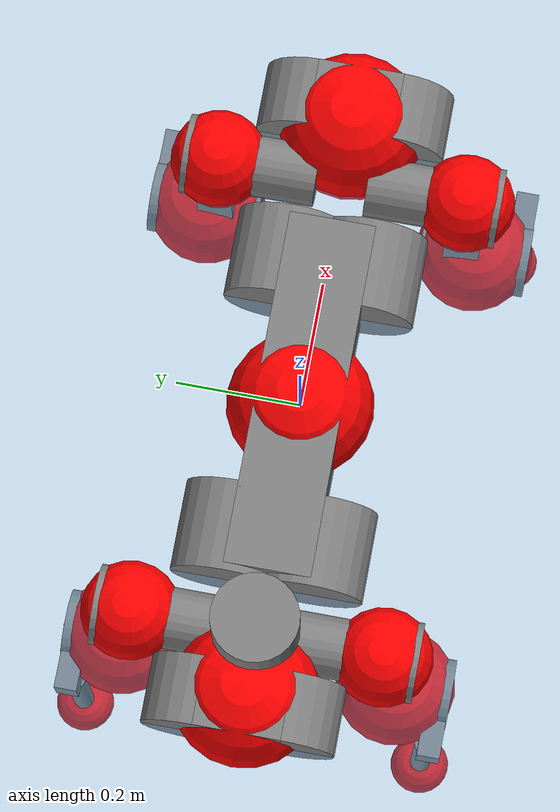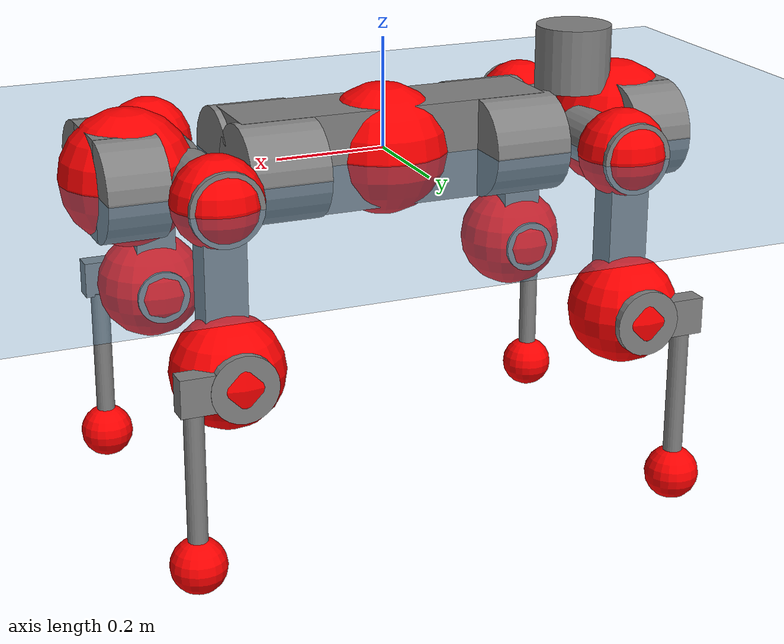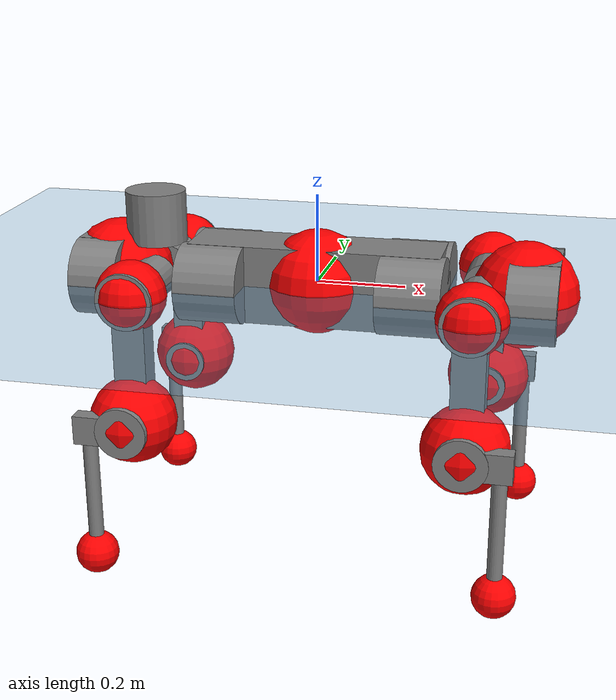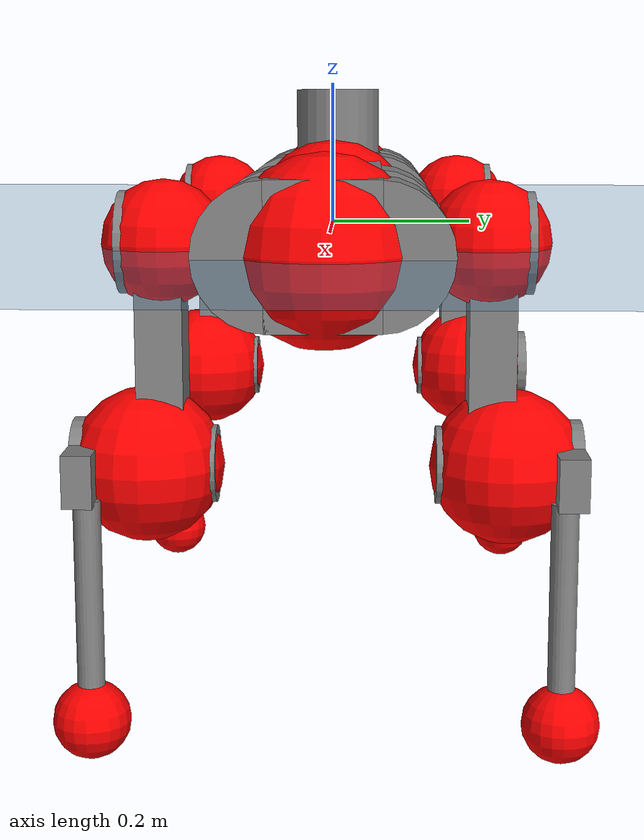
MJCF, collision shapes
<mujoco model="anymal_c">
  <compiler angle="radian" assetdir="assets" balanceinertia="true" inertiafromgeom="false"/>

  <option timestep="0.005" density="1.2" viscosity="2e-05"/>

  <size nkey="1"/>

  <visual>
    <quality shadowsize="8192"/>
    <map shadowclip="0.5"/>
  </visual>

  <default>
    <default class="/">
      <material specular="0" shininess="0.25"/>
      <geom contype="0" conaffinity="0" group="1" solref="-1000 -80"/>
      <site size="0.01 0.005 0.005" group="5"/>
      <general forcelimited="true" forcerange="-80 80" biastype="affine" gainprm="80" biasprm="0 -80 -2"/>
      <default class="anymal_c">
        <joint armature="0.01" damping="0.01" frictionloss="0.1"/>
        <default class="visual">
          <geom type="mesh" group="2"/>
          <default class="visual_zflip"/>
        </default>
        <default class="collision">
          <geom type="cylinder" group="3"/>
          <default class="foot">
            <geom size="0.03 0 0" type="sphere" condim="6" priority="1" friction="0.8 0.02 0.01" solimp="0.015 1 0.03"/>
          </default>
        </default>
      </default>
      <default class="reward_collision_sphere">
        <geom group="5" rgba="1 0 0 1"/>
      </default>
    </default>
  </default>

  <asset>
    <texture type="skybox" colorspace="auto" name="//unnamed_texture_0" builtin="gradient" rgb1="0.95 0.95 0.95" rgb2="0.95 0.95 0.95" width="100" height="600"/>
    <texture type="2d" colorspace="auto" name="texplane" builtin="checker" rgb1="0.345 0.575 0.748" rgb2="0.345 0.575 0.748" markrgb="1 1 1" width="512" height="512"/>
    <texture type="2d" colorspace="linear" name="base" file="base.png"/>
    <texture type="2d" colorspace="linear" name="top_shell" file="top_shell.png"/>
    <texture type="2d" colorspace="linear" name="bottom_shell" file="bottom_shell.png"/>
    <texture type="2d" colorspace="linear" name="remote" file="remote.png"/>
    <texture type="2d" colorspace="linear" name="hatch" file="hatch.png"/>
    <texture type="2d" colorspace="linear" name="handle" file="handle.png"/>
    <texture type="2d" colorspace="linear" name="face" file="face.png"/>
    <texture type="2d" colorspace="linear" name="battery" file="battery.png"/>
    <texture type="2d" colorspace="linear" name="lidar_cage" file="lidar_cage.png"/>
    <texture type="2d" colorspace="linear" name="depth_camera" file="depth_camera.png"/>
    <texture type="2d" colorspace="linear" name="wide_angle_camera" file="wide_angle_camera.png"/>
    <texture type="2d" colorspace="linear" name="lidar" file="lidar.png"/>
    <texture type="2d" colorspace="linear" name="drive" file="drive.png"/>
    <texture type="2d" colorspace="linear" name="hip_l" file="hip_l.png"/>
    <texture type="2d" colorspace="linear" name="shank_l" file="shank_l.png"/>
    <texture type="2d" colorspace="linear" name="foot" file="foot.png"/>
    <texture type="2d" colorspace="linear" name="thigh" file="thigh.png"/>
    <texture type="2d" colorspace="linear" name="shank_r" file="shank_r.png"/>
    <texture type="2d" colorspace="linear" name="hip_r" file="hip_r.png"/>
    <material name="MatPlane" class="/" texture="texplane" texuniform="true" texrepeat="2 2" specular="0.9" shininess="0.5"/>
    <material name="black_plastic" class="/" rgba="0.007 0.007 0.007 1"/>
    <material name="green" class="/" rgba="0.052 0.178 0.033 1"/>
    <material name="red" class="/" rgba="0.178 0.006 0.005 1"/>
    <material name="yellow" class="/" rgba="0.178 0.119 0.006 1"/>
    <material name="lwl" class="/" rgba="0.8 0.8 0.8 1"/>
    <material name="base" class="/" texture="base"/>
    <material name="top_shell" class="/" texture="top_shell"/>
    <material name="bottom_shell" class="/" texture="bottom_shell"/>
    <material name="hip_l" class="/" texture="hip_l"/>
    <material name="thigh" class="/" texture="thigh"/>
    <material name="shank_l" class="/" texture="shank_l"/>
    <material name="foot" class="/" texture="foot"/>
    <material name="hip_r" class="/" texture="hip_r"/>
    <material name="shank" class="/" texture="shank_r"/>
    <material name="hatch" class="/" texture="hatch"/>
    <material name="remote" class="/" texture="remote"/>
    <material name="handle" class="/" texture="handle"/>
    <material name="face" class="/" texture="face"/>
    <material name="depth_camera" class="/" texture="depth_camera"/>
    <material name="wide_angle_camera" class="/" texture="wide_angle_camera"/>
    <material name="battery" class="/" texture="battery"/>
    <material name="lidar_cage" class="/" texture="lidar_cage"/>
    <material name="lidar" class="/" texture="lidar"/>
    <material name="drive" class="/" texture="drive"/>
    <mesh name="base_0" class="/" file="base_0.obj"/>
    <mesh name="base_1" class="/" file="base_1.obj"/>
    <mesh name="base_2" class="/" file="base_2.obj"/>
    <mesh name="base_3" class="/" file="base_3.obj"/>
    <mesh name="base_4" class="/" file="base_4.obj"/>
    <mesh name="base_5" class="/" file="base_5.obj"/>
    <mesh name="top_shell" class="/" file="top_shell.obj"/>
    <mesh name="bottom_shell" class="/" file="bottom_shell.obj"/>
    <mesh name="remote" class="/" file="remote.obj"/>
    <mesh name="handle" class="/" file="handle.obj"/>
    <mesh name="face" class="/" file="face.obj"/>
    <mesh name="wide_angle_camera" class="/" file="wide_angle_camera.obj"/>
    <mesh name="depth_camera" class="/" file="depth_camera.obj"/>
    <mesh name="battery" class="/" file="battery.obj"/>
    <mesh name="lidar_cage" class="/" file="lidar_cage.obj"/>
    <mesh name="lidar" class="/" file="lidar.obj"/>
    <mesh name="drive" class="/" file="drive.obj"/>
    <mesh name="hip_l" class="/" file="hip_l.obj"/>
    <mesh name="thigh" class="/" file="thigh.obj"/>
    <mesh name="shank_l" class="/" file="shank_l.obj"/>
    <mesh name="foot" class="/" file="foot.obj"/>
    <mesh name="hip_r" class="/" file="hip_r.obj"/>
    <mesh name="hatch" class="/" file="hatch.obj"/>
    <mesh name="shank_r" class="/" file="shank_r.obj"/>
  </asset>

  <worldbody>
    <geom name="floor" class="/" size="100 100 0.125" type="plane" group="0" material="MatPlane"/>
    <light name="toplight_shadow" class="/" pos="0 0 5" dir="0.0990148 0.0990148 -0.990148" type="directional" ambient="0.04 0.04 0.04" diffuse="0.55 0.55 0.55" specular="0.12 0.12 0.12"/>
    <light name="toplight_fill" class="/" pos="0 0 5" dir="0.0990148 0.0990148 -0.990148" type="directional" castshadow="false" ambient="0.04 0.04 0.04" diffuse="0.3 0.3 0.3" specular="0.08 0.08 0.08"/>
    <body name="trunk" childclass="anymal_c" pos="0.000774518 0.000249073 0.000763703" quat="1 0.0002568 -0.000351372 0.000101738">
      <inertial pos="0.00330974 -0.000765051 0.0486507" quat="0.500577 0.501035 0.499015 0.49937" mass="18.2503" diaginertia="0.776946 0.420393 0.208294"/>
      <joint name="//unnamed_joint_0" type="free" armature="0" damping="0" frictionloss="0"/>
      <geom name="//unnamed_geom_1" class="visual" material="green" mesh="base_0"/>
      <geom name="//unnamed_geom_2" class="visual" material="yellow" mesh="base_1"/>
      <geom name="//unnamed_geom_3" class="visual" material="red" mesh="base_2"/>
      <geom name="//unnamed_geom_4" class="visual" material="black_plastic" mesh="base_3"/>
      <geom name="//unnamed_geom_5" class="visual" material="lwl" mesh="base_4"/>
      <geom name="//unnamed_geom_6" class="visual" material="base" mesh="base_5"/>
      <geom name="trunk_1" class="collision" size="0.285142 0.0688274 0.0884923" type="box"/>
      <geom name="trunk_2" class="collision" size="0.0884923 0.0712855" pos="0.225668 0.0646527 0" quat="0.707107 0 0.707107 0"/>
      <geom name="trunk_3" class="collision" size="0.0884923 0.0712855" pos="-0.225668 0.0646527 0" quat="0.707107 0 0.707107 0"/>
      <geom name="trunk_4" class="collision" size="0.0884923 0.0712855" pos="0.225668 -0.0646527 0" quat="0.707107 0 0.707107 0"/>
      <geom name="trunk_5" class="collision" size="0.0884923 0.0712855" pos="-0.225668 -0.0646527 0" quat="0.707107 0 0.707107 0"/>
      <geom name="//unnamed_geom_12" class="visual" material="top_shell" mesh="top_shell"/>
      <geom name="//unnamed_geom_13" class="visual" material="bottom_shell" mesh="bottom_shell"/>
      <geom name="//unnamed_geom_14" class="visual" material="remote" mesh="remote"/>
      <geom name="//unnamed_geom_15" class="visual" material="handle" mesh="handle"/>
      <geom name="//unnamed_geom_16" class="visual" pos="0.430067 0 0" quat="1 0 0 0" material="face" mesh="face"/>
      <geom name="trunk_6" class="collision" size="0.0540786 0.0688274 0.0884923" pos="0.487132 0 0" type="box"/>
      <geom name="//unnamed_geom_18" class="collision" size="0.0884923 0.0540786" pos="0.487132 0.0646527 0" quat="0.707107 0 0.707107 0"/>
      <geom name="//unnamed_geom_19" class="collision" size="0.0884923 0.0540786" pos="0.487132 -0.0646527 0" quat="0.707107 0 0.707107 0"/>
      <geom name="//unnamed_geom_20" class="visual" pos="0.478985 0 -0.0284943" quat="0.965926 0 0.258819 0" material="depth_camera" mesh="depth_camera"/>
      <geom name="//unnamed_geom_21" class="visual" pos="0.532266 0 0.014799" material="wide_angle_camera" mesh="wide_angle_camera"/>
      <geom name="//unnamed_geom_22" class="visual_zflip" pos="-0.430067 0 0" quat="0 0 0 1" material="face" mesh="face"/>
      <geom name="trunk_7" class="collision" size="0.0540786 0.0688274 0.0884923" pos="-0.487132 0 0" quat="0 0 0 1" type="box"/>
      <geom name="//unnamed_geom_24" class="collision" size="0.0884923 0.0540786" pos="-0.487132 -0.0646527 0" quat="0 -0.707107 0 0.707107"/>
      <geom name="//unnamed_geom_25" class="collision" size="0.0884923 0.0540786" pos="-0.487132 0.0646527 0" quat="0 -0.707107 0 0.707107"/>
      <geom name="//unnamed_geom_26" class="visual" pos="-0.478985 0 -0.0284943" quat="0 -0.258819 0 0.965926" material="depth_camera" mesh="depth_camera"/>
      <geom name="//unnamed_geom_27" class="visual_zflip" pos="-0.532266 0 0.014799" quat="0 0 0 1" material="wide_angle_camera" mesh="wide_angle_camera"/>
      <geom name="//unnamed_geom_28" class="visual" material="battery" mesh="battery"/>
      <geom name="//unnamed_geom_29" class="visual" pos="0 0.069122 0.0290904" quat="0.683013 -0.183013 0.183013 0.683013" material="depth_camera" mesh="depth_camera"/>
      <geom name="//unnamed_geom_30" class="visual" pos="0 -0.069122 0.0290904" quat="0.683013 0.183013 0.183013 -0.683013" material="depth_camera" mesh="depth_camera"/>
      <geom name="//unnamed_geom_31" class="visual" pos="-0.37767 0 0.0726605" quat="1 0 0 0" material="lidar_cage" mesh="lidar_cage"/>
      <geom name="trunk_8" class="collision" size="0.0688274 0.0589949" pos="-0.37767 0 0.131975"/>
      <geom name="//unnamed_geom_33" class="visual" pos="-0.37767 -4.4766e-05 0.140576" quat="0.707107 0 0 -0.707107" material="lidar" mesh="lidar"/>
      <geom name="//unnamed_geom_34" class="visual" pos="0.311163 0.0960786 -1.12071e-09" quat="0.258819 0.965926 0 0" material="drive" mesh="drive"/>
      <geom name="//unnamed_geom_35" class="visual" pos="0.311163 -0.0960786 1.12071e-09" quat="0.258819 -0.965926 0 0" material="drive" mesh="drive"/>
      <geom name="//unnamed_geom_36" class="visual" pos="-0.311163 0.0960786 1.12071e-09" quat="0 0 0.965926 -0.258819" material="drive" mesh="drive"/>
      <geom name="//unnamed_geom_37" class="visual" pos="-0.311163 -0.0960786 -1.12071e-09" quat="0 0 -0.965926 -0.258819" material="drive" mesh="drive"/>
      <geom name="//unnamed_geom_38" class="visual" pos="0.120356 0 0.0721662" quat="1 0 0 0" material="hatch" mesh="hatch"/>
      <geom name="//unnamed_geom_39" class="reward_collision_sphere" size="0.11799"/>
      <geom name="//unnamed_geom_40" class="reward_collision_sphere" size="0.11799" pos="0.4669 0 0"/>
      <geom name="//unnamed_geom_41" class="reward_collision_sphere" size="0.11799" pos="-0.4669 0 0"/>
      <site name="imu" pos="0.253831 0.00287424 0.0463995" size="0.00983248"/>
      <camera name="track" pos="0 -1.84722 0" quat="0.707107 0.707107 0 0" mode="trackcom"/>
      <camera name="ego_camera" pos="0.4669 0 -0.0395431" quat="-0.5 -0.5 0.5 0.5"/>
      <body name="LF_HIP" pos="0.311695 0.0964921 0.000562767" quat="0.258899 0.965904 -0.000281821 0.000155239">
        <inertial pos="0.0596129 -0.0141547 -0.00839735" quat="-0.126036 0.707842 -0.136287 0.681543" mass="2.65402" diaginertia="0.00707021 0.00331311 0.00308858"/>
        <joint name="LF_HAA" pos="0 0 0" axis="0.999997 -0.00136768 0.00218887" range="-0.714696 0.492492" armature="0.00952027" damping="0.00974018" frictionloss="0.0966913"/>
        <geom name="//unnamed_geom_42" class="visual" pos="0 -6.59261e-05 1.08283e-05" quat="0.258819 -0.965926 0 0" material="hip_l" mesh="hip_l"/>
        <geom name="//unnamed_geom_43" class="visual" pos="0.0621496 -0.0738303 -0.0431065" quat="0.183013 -0.683013 0.683013 0.183013" material="drive" mesh="drive"/>
        <geom name="//unnamed_geom_44" class="collision" size="0.0491624 0.0688274" pos="0.0621496 -0.0110462 -0.00682613" quat="-0.353553 -0.612372 0.612372 -0.353553"/>
        <body name="LF_THIGH" pos="0.0624155 -0.0673121 -0.0403955" quat="0.183039 -0.682959 0.68307 0.182974">
          <inertial pos="0.0321888 -0.000185294 -0.243807" quat="0.993071 -0.0049277 -0.0819547 0.0840798" mass="2.89316" diaginertia="0.0364418 0.0202398 0.00396169"/>
          <joint name="LF_HFE" pos="0 0 0" axis="0.999999 -5.57266e-05 -0.00161712" range="-3.14075 3.15237" armature="0.0101106" damping="0.00354452" frictionloss="0.0981571"/>
          <geom name="//unnamed_geom_45" class="visual" pos="0.00226706 3.57235e-06 0" quat="0.707107 0 0 -0.707107" material="thigh" mesh="thigh"/>
          <geom name="//unnamed_geom_46" class="collision" size="0.0639111 0.0393299" pos="0.0415022 0 0" quat="0.5 0.5 -0.5 -0.5"/>
          <geom name="//unnamed_geom_47" class="collision" size="0.0368718 0.0294974 0.138947" pos="0.0311267 0 -0.1397" quat="0.707107 0 0 -0.707107" type="box"/>
          <geom name="//unnamed_geom_48" class="visual" pos="0.104067 0 -0.281745" quat="1 0 0 0" material="drive" mesh="drive"/>
          <geom name="//unnamed_geom_49" class="collision" size="0.0491624 0.0688274" pos="0.0314379 0 -0.281745" quat="0.707107 0 0.707107 0"/>
          <geom name="//unnamed_geom_50" class="reward_collision_sphere" size="0.0786599" pos="0.0259389 0 0"/>
          <body name="LF_SHANK" pos="0.105222 0.000346268 -0.282586" quat="1 -2.62823e-05 -2.04438e-06 3.49367e-05">
            <inertial pos="0.00536208 -0.0557138 -0.0806118" quat="0.992919 -0.116049 -0.00108454 -0.0253682" mass="0.562003" diaginertia="0.0121195 0.00618467 0.0010591"/>
            <joint name="LF_KFE" pos="0 0 0" axis="1 0.000110888 -0.000948861" range="-3.15765 3.14006" armature="0.00985106" damping="0.00914173" frictionloss="0.0978395"/>
            <geom name="//unnamed_geom_51" class="visual" pos="0.000739238 0.00394166 0" quat="0.707107 0 0 -0.707107" material="shank_l" mesh="shank_l"/>
            <geom name="LF_kfe_act" class="collision" size="0.0589949 0.019665" pos="0.0207511 0 0" quat="0.5 0.5 -0.5 -0.5"/>
            <geom name="//unnamed_geom_53" class="collision" size="0.0565358 0.0331846 0.0186817" pos="0.0207511 -0.0531067 0" quat="0.5 0.5 -0.5 -0.5" type="box"/>
            <geom name="//unnamed_geom_54" class="visual" pos="0.0135399 -0.0799613 -0.33411" quat="0.382683 0 0 -0.92388" material="foot" mesh="foot"/>
            <geom name="LF_calf" class="collision" size="0.0172068 0.138886" pos="0.0135401 -0.0812315 -0.167055" quat="0.707107 0 0 -0.707107"/>
            <geom name="LF_foot" class="foot" size="0.0292117" pos="0.0135401 -0.0812315 -0.311867" quat="0.707107 0 0 -0.707107"/>
            <geom name="//unnamed_geom_57" class="reward_collision_sphere" size="0.0983248" pos="-0.0518778 0 0"/>
            <geom name="//unnamed_geom_58" class="reward_collision_sphere" size="0.0491624" pos="0.0135401 -0.0812315 -0.311867"/>
            <site name="LF_foot" class="foot" pos="0.0135401 -0.0812315 -0.311867" quat="0.707107 0 0 -0.707107" size="0.00983248"/>
          </body>
        </body>
      </body>
      <body name="RF_HIP" pos="0.310868 -0.0975466 0.000399171" quat="0.258785 -0.965935 7.01217e-06 -8.46998e-06">
        <inertial pos="0.0585126 0.0153676 -0.00811311" quat="0.135869 0.679881 0.127886 0.709188" mass="2.66111" diaginertia="0.0071552 0.00330799 0.00314188"/>
        <joint name="RF_HAA" pos="0 0 0" axis="0.999999 -0.00117147 -0.00070401" stiffness="0.000148601" range="-0.507387 0.716311" armature="0.00985468" damping="0.00847052" frictionloss="0.0983537"/>
        <geom name="//unnamed_geom_59" class="visual" pos="0 6.59256e-05 1.08283e-05" quat="0.258819 0.965926 0 0" material="hip_r" mesh="hip_r"/>
        <geom name="//unnamed_geom_60" class="visual" pos="0.0621496 0.0738303 -0.0431065" quat="0.183013 0.683013 0.683013 -0.183013" material="drive" mesh="drive"/>
        <geom name="//unnamed_geom_61" class="collision" size="0.0491624 0.0688274" pos="0.0621496 0.0110462 -0.00682613" quat="-0.353553 0.612372 0.612372 0.353553"/>
        <body name="RF_THIGH" pos="0.0617582 0.0669927 -0.0409314" quat="0.182993 0.683038 0.682991 -0.18302">
          <inertial pos="0.0319606 -5.36809e-05 -0.243114" quat="0.992604 -0.00377602 -0.0779287 0.0930102" mass="2.93941" diaginertia="0.0369237 0.0201888 0.00396877"/>
          <joint name="RF_HFE" pos="0 0 0" axis="1 -0.00018405 0.000277197" stiffness="0.006153" range="-3.15015 3.13016" armature="0.010075" damping="0.010016" frictionloss="0.100737"/>
          <geom name="//unnamed_geom_62" class="visual" pos="0.00226706 3.57235e-06 0" quat="0.707107 0 0 -0.707107" material="thigh" mesh="thigh"/>
          <geom name="//unnamed_geom_63" class="collision" size="0.0639111 0.0393299" pos="0.0415022 0 0" quat="0.5 0.5 0.5 0.5"/>
          <geom name="//unnamed_geom_64" class="collision" size="0.0368718 0.0294974 0.138947" pos="0.0311267 0 -0.1397" quat="0.707107 0 0 0.707107" type="box"/>
          <geom name="//unnamed_geom_65" class="visual" pos="0.104067 0 -0.281745" quat="1 0 0 0" material="drive" mesh="drive"/>
          <geom name="//unnamed_geom_66" class="collision" size="0.0491624 0.0688274" pos="0.0314379 0 -0.281745" quat="0.707107 0 0.707107 0"/>
          <geom name="//unnamed_geom_67" class="reward_collision_sphere" size="0.0786599" pos="0.0259389 0 0"/>
          <body name="RF_SHANK" pos="0.103831 0.000245218 -0.281758" quat="1 -1.91153e-07 -1.25367e-07 1.39034e-06">
            <inertial pos="0.0063763 0.0564646 -0.0784228" quat="0.993415 0.111725 -0.000847985 0.0253546" mass="0.555779" diaginertia="0.0119938 0.0061939 0.00104077"/>
            <joint name="RF_KFE" pos="0 0 0" axis="0.999999 -0.00129702 -0.00111968" range="-3.14204 3.15344" armature="0.00949514" damping="0.00899689" frictionloss="0.0980842"/>
            <geom name="//unnamed_geom_68" class="visual" pos="0.000739234 -0.00394165 0" quat="0.707107 0 0 0.707107" material="shank" mesh="shank_r"/>
            <geom name="RF_kfe_act" class="collision" size="0.0589949 0.019665" pos="0.0207511 0 0" quat="0.5 0.5 0.5 0.5"/>
            <geom name="//unnamed_geom_70" class="collision" size="0.0565358 0.0331846 0.0186817" pos="0.0207511 0.0531067 0" quat="0.5 0.5 0.5 0.5" type="box"/>
            <geom name="//unnamed_geom_71" class="visual" pos="0.0135403 0.0799613 -0.33411" quat="0.382683 0 0 0.92388" material="foot" mesh="foot"/>
            <geom name="RF_calf" class="collision" size="0.0172068 0.138886" pos="0.0135401 0.0812315 -0.167055" quat="0.707107 0 0 0.707107"/>
            <geom name="RF_foot" class="foot" size="0.0298023" pos="0.0135401 0.0812315 -0.311867" quat="0.707107 0 0 0.707107"/>
            <geom name="//unnamed_geom_74" class="reward_collision_sphere" size="0.0983248" pos="-0.0518778 0 0"/>
            <geom name="//unnamed_geom_75" class="reward_collision_sphere" size="0.0491624" pos="0.0135401 0.0812315 -0.311867"/>
            <site name="RF_foot" class="foot" pos="0.0135401 0.0812315 -0.311867" quat="0.707107 0 0 0.707107" size="0.00983248"/>
          </body>
        </body>
      </body>
      <body name="LH_HIP" pos="-0.310869 0.0967222 0.000271749" quat="8.71838e-05 -1.3236e-05 0.965925 -0.258823">
        <inertial pos="0.0591249 0.0141523 -0.0084006" quat="0.135475 0.678534 0.128498 0.710441" mass="2.64575" diaginertia="0.00702469 0.00333896 0.00309342"/>
        <joint name="LH_HAA" pos="0 0 0" axis="0.999999 0.00133447 -0.000543384" range="-0.478983 0.725601" armature="0.00975941" damping="0.0134219" frictionloss="0.098894"/>
        <geom name="//unnamed_geom_76" class="visual" pos="0 6.59256e-05 1.08283e-05" quat="-0.258819 -0.965926 0 0" material="hip_r" mesh="hip_r"/>
        <geom name="//unnamed_geom_77" class="visual" pos="0.0621496 0.0738303 -0.0431065" quat="0.183013 0.683013 0.683013 -0.183013" material="drive" mesh="drive"/>
        <geom name="//unnamed_geom_78" class="collision" size="0.0491624 0.0688274" pos="0.0621496 0.0110462 -0.00682613" quat="-0.353553 0.612372 0.612372 0.353553"/>
        <body name="LH_THIGH" pos="0.0614883 0.0664321 -0.0413574" quat="0.182861 0.683019 0.683014 -0.183135">
          <inertial pos="0.0320644 0.000166042 -0.243592" quat="0.992799 -0.00497015 -0.0804964 0.0885721" mass="2.8867" diaginertia="0.0360031 0.0199825 0.00392154"/>
          <joint name="LH_HFE" pos="0 0 0" axis="1 -0.000459832 0.000152713" stiffness="0.00208478" range="-3.14457 3.12964" armature="0.00972726" damping="0.00917449" frictionloss="0.0973935"/>
          <geom name="//unnamed_geom_79" class="visual" pos="0.00226706 3.57235e-06 0" quat="0.707107 0 0 -0.707107" material="thigh" mesh="thigh"/>
          <geom name="//unnamed_geom_80" class="collision" size="0.0639111 0.0393299" pos="0.0415022 0 0" quat="0.5 0.5 -0.5 -0.5"/>
          <geom name="//unnamed_geom_81" class="collision" size="0.0368718 0.0294974 0.138947" pos="0.0311267 0 -0.1397" quat="0.707107 0 0 -0.707107" type="box"/>
          <geom name="//unnamed_geom_82" class="visual" pos="0.104067 0 -0.281745" quat="1 0 0 0" material="drive" mesh="drive"/>
          <geom name="//unnamed_geom_83" class="collision" size="0.0491624 0.0688274" pos="0.0314379 0 -0.281745" quat="0.707107 0 0.707107 0"/>
          <geom name="//unnamed_geom_84" class="reward_collision_sphere" size="0.0786599" pos="0.0259389 0 0"/>
          <body name="LH_SHANK" pos="0.104767 -0.0010952 -0.281378" quat="1 6.94378e-05 3.8215e-05 -3.75176e-05">
            <inertial pos="0.00478803 0.0574281 -0.0805489" quat="0.993199 0.113845 -0.000705212 0.0244014" mass="0.563073" diaginertia="0.0122175 0.00617165 0.00105554"/>
            <joint name="LH_KFE" pos="0 0 0" axis="1 0.000263477 0.000441866" range="-3.14096 3.13965" armature="0.00994647" damping="0.0111994" frictionloss="0.0939646"/>
            <geom name="//unnamed_geom_85" class="visual" pos="0.000739234 -0.00394165 0" quat="-0.707107 0 0 -0.707107" material="shank" mesh="shank_r"/>
            <geom name="LH_kfe_act" class="collision" size="0.0589949 0.019665" pos="0.0207511 0 0" quat="0.5 0.5 -0.5 -0.5"/>
            <geom name="//unnamed_geom_87" class="collision" size="0.0565358 0.0331846 0.0186817" pos="0.0207511 0.0531067 0" quat="0.5 0.5 -0.5 -0.5" type="box"/>
            <geom name="//unnamed_geom_88" class="visual" pos="0.0135403 0.0799613 -0.33411" quat="-0.382683 0 0 -0.92388" material="foot" mesh="foot"/>
            <geom name="LH_calf" class="collision" size="0.0172068 0.138886" pos="0.0135401 0.0812315 -0.167055" quat="0.707107 0 0 -0.707107"/>
            <geom name="LH_foot" class="foot" size="0.030821" pos="0.0135401 0.0812315 -0.311867" quat="0.707107 0 0 -0.707107"/>
            <geom name="//unnamed_geom_91" class="reward_collision_sphere" size="0.0983248" pos="-0.0518778 0 0"/>
            <geom name="//unnamed_geom_92" class="reward_collision_sphere" size="0.0491624" pos="0.0135401 0.0812315 -0.311867"/>
            <site name="LH_foot" class="foot" pos="0.0135401 0.0812315 -0.311867" quat="0.707107 0 0 -0.707107" size="0.00983248"/>
          </body>
        </body>
      </body>
      <body name="RH_HIP" pos="-0.311102 -0.095715 4.56697e-05" quat="3.03719e-05 -0.000151086 -0.965932 -0.258794">
        <inertial pos="0.0589335 -0.0142296 -0.00762248" quat="-0.128029 0.709875 -0.13542 0.679225" mass="2.60155" diaginertia="0.00694148 0.00325534 0.00307526"/>
        <joint name="RH_HAA" pos="0 0 0" axis="1 1.55338e-05 4.66098e-06" range="-0.724429 0.501324" armature="0.0102702" damping="0.00993243" frictionloss="0.0977745"/>
        <geom name="//unnamed_geom_93" class="visual" pos="0 -6.59261e-05 1.08283e-05" quat="-0.258819 0.965926 0 0" material="hip_l" mesh="hip_l"/>
        <geom name="//unnamed_geom_94" class="visual" pos="0.0621496 -0.0738303 -0.0431065" quat="-0.183013 0.683013 -0.683013 -0.183013" material="drive" mesh="drive"/>
        <geom name="//unnamed_geom_95" class="collision" size="0.0491624 0.0688274" pos="0.0621496 -0.0110462 -0.00682613" quat="0.353553 0.612372 -0.612372 0.353553"/>
        <body name="RH_THIGH" pos="0.0625078 -0.0671466 -0.0413218" quat="-0.183051 0.68302 -0.682994 -0.183019">
          <inertial pos="0.0331007 -0.00082641 -0.242769" quat="0.993177 -0.00570716 -0.0805814 0.0841033" mass="2.94698" diaginertia="0.0362642 0.0202238 0.00394794"/>
          <joint name="RH_HFE" pos="0 0 0" axis="0.999994 0.00329536 -0.00104591" range="-3.14778 3.14733" armature="0.00979463" damping="0.00780056" frictionloss="0.100038"/>
          <geom name="//unnamed_geom_96" class="visual" pos="0.00226706 3.57235e-06 0" quat="0.707107 0 0 -0.707107" material="thigh" mesh="thigh"/>
          <geom name="//unnamed_geom_97" class="collision" size="0.0639111 0.0393299" pos="0.0415022 0 0" quat="0.5 0.5 0.5 0.5"/>
          <geom name="//unnamed_geom_98" class="collision" size="0.0368718 0.0294974 0.138947" pos="0.0311267 0 -0.1397" quat="0.707107 0 0 0.707107" type="box"/>
          <geom name="//unnamed_geom_99" class="visual" pos="0.104067 0 -0.281745" quat="1 0 0 0" material="drive" mesh="drive"/>
          <geom name="//unnamed_geom_100" class="collision" size="0.0491624 0.0688274" pos="0.0314379 0 -0.281745" quat="0.707107 0 0.707107 0"/>
          <geom name="//unnamed_geom_101" class="reward_collision_sphere" size="0.0786599" pos="0.0259389 0 0"/>
          <body name="RH_SHANK" pos="0.104122 0.000520175 -0.281671" quat="1 0.00017444 0.000131269 1.38035e-05">
            <inertial pos="0.00565324 -0.056495 -0.0796209" quat="0.992882 -0.116211 0.000331247 -0.0260713" mass="0.569974" diaginertia="0.0122757 0.0062935 0.001064"/>
            <joint name="RH_KFE" pos="0 0 0" axis="0.999968 0.000200277 0.00795139" range="-3.12686 3.11841" armature="0.0101255" damping="0.000962695" frictionloss="0.0973723"/>
            <geom name="//unnamed_geom_102" class="visual" pos="0.000739238 0.00394166 0" quat="0.707107 0 0 -0.707107" material="shank_l" mesh="shank_l"/>
            <geom name="RH_kfe_act" class="collision" size="0.0589949 0.019665" pos="0.0207511 0 0" quat="0.5 0.5 0.5 0.5"/>
            <geom name="//unnamed_geom_104" class="collision" size="0.0565358 0.0331846 0.0186817" pos="0.0207511 -0.0531067 0" quat="0.5 0.5 0.5 0.5" type="box"/>
            <geom name="//unnamed_geom_105" class="visual" pos="0.0135399 -0.0799613 -0.33411" quat="0.382683 0 0 -0.92388" material="foot" mesh="foot"/>
            <geom name="RH_calf" class="collision" size="0.0172068 0.138886" pos="0.0135401 -0.0812315 -0.167055" quat="0.707107 0 0 0.707107"/>
            <geom name="RH_foot" class="foot" size="0.0281827" pos="0.0135401 -0.0812315 -0.311867" quat="0.707107 0 0 0.707107"/>
            <geom name="//unnamed_geom_108" class="reward_collision_sphere" size="0.0983248" pos="-0.0518778 0 0"/>
            <geom name="//unnamed_geom_109" class="reward_collision_sphere" size="0.0491624" pos="0.0135401 -0.0812315 -0.311867"/>
            <site name="RH_foot" class="foot" pos="0.0135401 -0.0812315 -0.311867" quat="0.707107 0 0 0.707107" size="0.00983248"/>
          </body>
        </body>
      </body>
    </body>
  </worldbody>

  <contact>
    <pair class="/" geom1="floor" geom2="LF_foot" name="//unnamed_contact_0"/>
    <pair class="/" geom1="floor" geom2="RF_foot" name="//unnamed_contact_1"/>
    <pair class="/" geom1="floor" geom2="LH_foot" name="//unnamed_contact_2"/>
    <pair class="/" geom1="floor" geom2="RH_foot" name="//unnamed_contact_3"/>
  </contact>

  <actuator>
    <general name="LF_HAA" class="/" joint="LF_HAA" forcerange="-80.6585 80.6585" gainprm="81.7287" biasprm="0 -81.7287 -2.00524"/>
    <general name="LF_HFE" class="/" joint="LF_HFE" forcerange="-78.6562 78.6562" gainprm="81.7287" biasprm="0 -81.7287 -2.00524"/>
    <general name="LF_KFE" class="/" joint="LF_KFE" forcerange="-79.4899 79.4899" gainprm="81.7287" biasprm="0 -81.7287 -2.00524"/>
    <general name="RF_HAA" class="/" joint="RF_HAA" forcerange="-79.5581 79.5581" gainprm="81.7287" biasprm="0 -81.7287 -2.00524"/>
    <general name="RF_HFE" class="/" joint="RF_HFE" forcerange="-77.2233 77.2233" gainprm="81.7287" biasprm="0 -81.7287 -2.00524"/>
    <general name="RF_KFE" class="/" joint="RF_KFE" forcerange="-82.372 82.372" gainprm="81.7287" biasprm="0 -81.7287 -2.00524"/>
    <general name="LH_HAA" class="/" joint="LH_HAA" forcerange="-80.4434 80.4434" gainprm="81.7287" biasprm="0 -81.7287 -2.00524"/>
    <general name="LH_HFE" class="/" joint="LH_HFE" forcerange="-76.4225 76.4225" gainprm="81.7287" biasprm="0 -81.7287 -2.00524"/>
    <general name="LH_KFE" class="/" joint="LH_KFE" forcerange="-79.9847 79.9847" gainprm="81.7287" biasprm="0 -81.7287 -2.00524"/>
    <general name="RH_HAA" class="/" joint="RH_HAA" forcerange="-79.4638 79.4638" gainprm="81.7287" biasprm="0 -81.7287 -2.00524"/>
    <general name="RH_HFE" class="/" joint="RH_HFE" forcerange="-76.8297 76.8297" gainprm="81.7287" biasprm="0 -81.7287 -2.00524"/>
    <general name="RH_KFE" class="/" joint="RH_KFE" forcerange="-80.1269 80.1269" gainprm="81.7287" biasprm="0 -81.7287 -2.00524"/>
  </actuator>

  <sensor>
    <gyro site="imu" name="imu_angular_velocity"/>
    <velocimeter site="imu" name="imu_linear_velocity"/>
    <framelinvel objtype="site" objname="LF_foot" name="LF_foot_global_linear_velocity"/>
    <framelinvel objtype="site" objname="RF_foot" name="RF_foot_global_linear_velocity"/>
    <framelinvel objtype="site" objname="LH_foot" name="LH_foot_global_linear_velocity"/>
    <framelinvel objtype="site" objname="RH_foot" name="RH_foot_global_linear_velocity"/>
  </sensor>

  <keyframe>
    <key name="home" qpos="0 0 0.55 1 0 0 0 0 0.4 -0.8 0 -0.4 0.8 0 -0.4 0.8 0 0.4 -0.8"/>
  </keyframe>
</mujoco>
